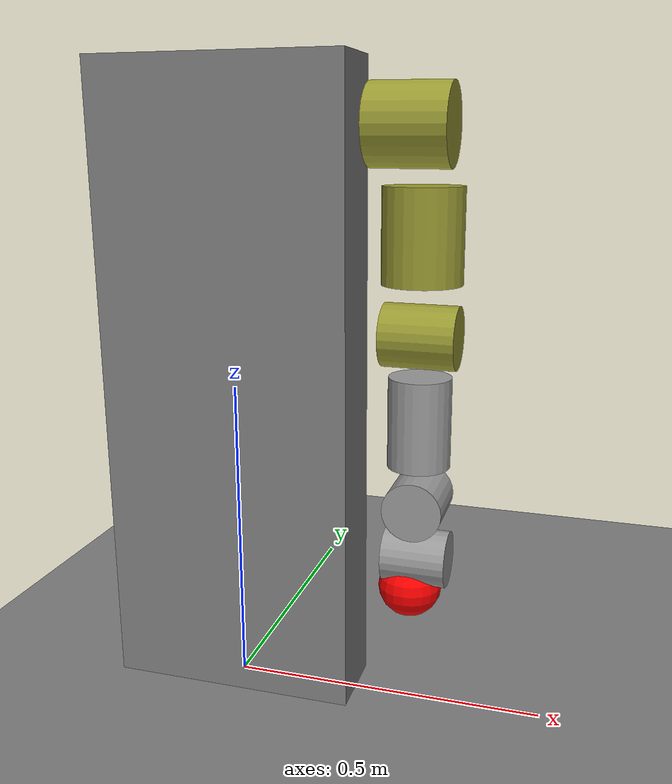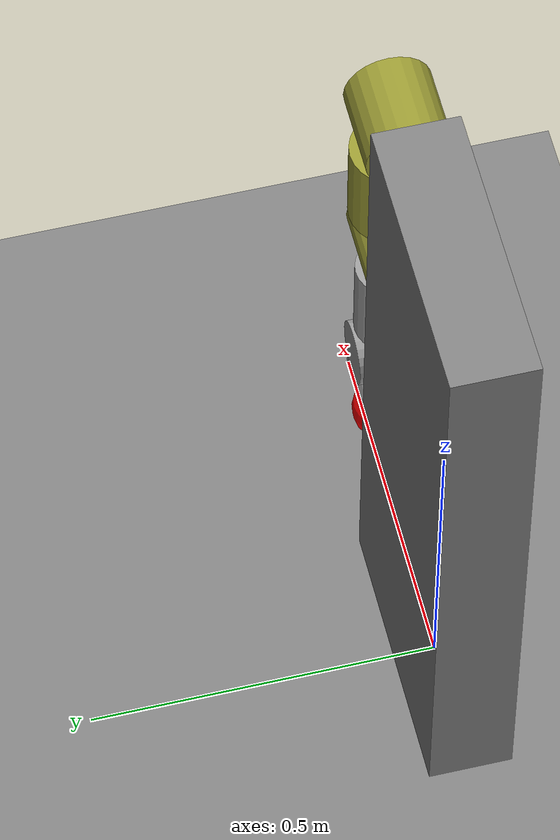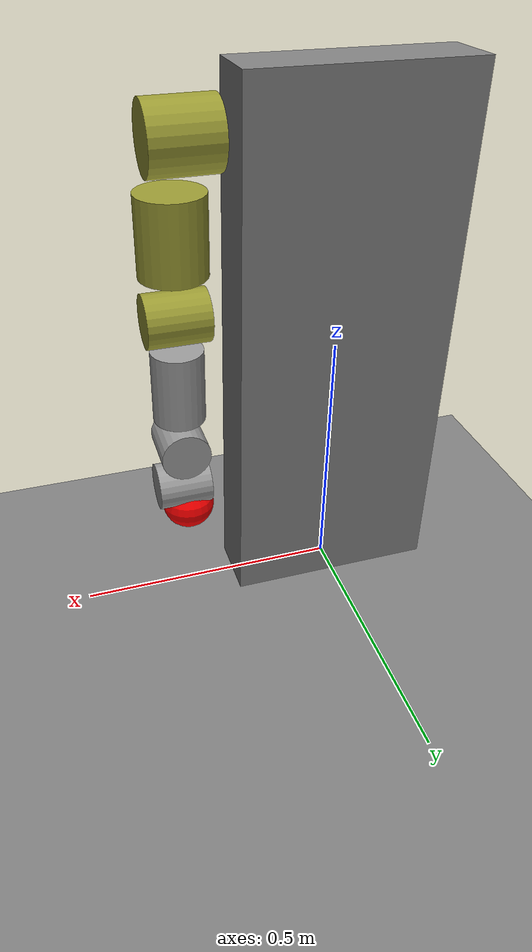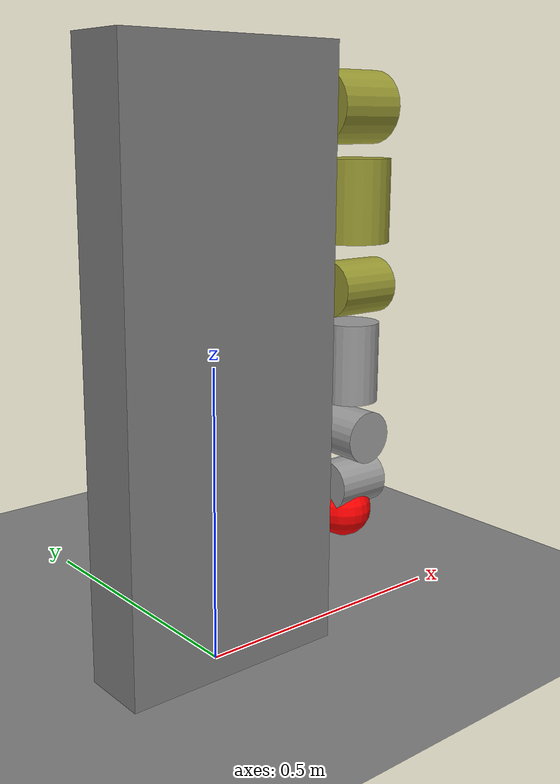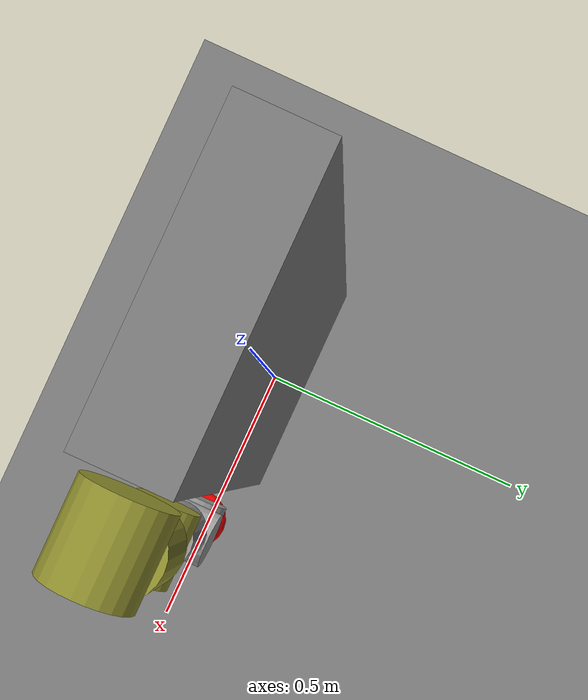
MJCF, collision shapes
<mujoco model="moz1_left_hand">
    <compiler angle="radian" autolimits="true" eulerseq="xyz" meshdir="meshes"/>
    <option timestep="0.002" iterations="100" integrator="implicitfast" density="0" viscosity="0" />

    <visual>
        <headlight diffuse="0.6 0.6 0.6" ambient="0.3 0.3 0.3" specular="0 0 0"/>
        <rgba haze="0.15 0.25 0.35 1"/>
        <global azimuth="150" elevation="-20"/>
    </visual>

    <asset>
        <texture name="plane" type="2d" builtin="checker" rgb1=".1 .1 .1" rgb2=".9 .9 .9" width="512" height="512" />
        <material name="plane" texture="plane" reflectance="0.3" texrepeat="1 1" texuniform="true" />
        <texture type="skybox" builtin="gradient" rgb1="0.3 0.5 0.7" rgb2="0 0 0" width="512" height="3072"/>

        <mesh name="L1" content_type="model/stl" file="L1.STL" />
        <mesh name="L2" content_type="model/stl" file="L2.STL" />
        <mesh name="L3" content_type="model/stl" file="L3.STL" />
        <mesh name="L4" content_type="model/stl" file="L4.STL" />
        <mesh name="L5" content_type="model/stl" file="L5.STL" />
        <mesh name="L6" content_type="model/stl" file="L6.STL" />
        <mesh name="L7" content_type="model/stl" file="L7.STL" />
    </asset>

    <worldbody>
        <geom name="floor" pos="0 0 0" size="10 10 0.1" type="plane" material="plane" condim="3" contype="1" conaffinity="65535" />
        <light directional="true" ambient=".3 .3 .3" pos="30 30 30" dir="0 -2 -1" diffuse=".5 .5 .5" specular=".5 .5 .5" />
        <body name="target" mocap="true" pos="0.289 0.0 0.1995" >
            <geom type="sphere" size="0.05" rgba="1 0 0 1" contype="0" conaffinity="0" />
        </body>

        <body name="base" pos="0 0.0 0.5">
            <geom type="box" size="0.2 0.06 0.5" rgba="0.5 0.5 0.5 0.6" mass="10" condim="3" contype="1" conaffinity="65535" />
            <body name="l_lh_1" pos="0.22 0 0.4">
                <inertial pos="0.0547495 0.00276998 0.00022292" quat="0.513235 0.51481 0.485909 0.485235" mass="2.26362" diaginertia="0.00609871 0.00593897 0.00291596" />
                <joint name="j_lh_1" pos="0 0 0" axis="1 0 0" damping="0.05" range="-3.1 3.1" actuatorfrcrange="-200 200" />
                <geom type="mesh" rgba="0.5 0.5 0.529412 1" mesh="L1" contype="0" conaffinity="0" density="0" group="1" />
                <geom type="cylinder" size="0.06 0.06" pos="0.06 0 0" euler="0 1.578 0" rgba="0.6 0.6 0.2 1" contype="1" conaffinity="1" density="0" group="3" />
                <body name="l_lh_2" pos="0.079 0 0">
                    <inertial pos="-0.0007589 -0.00895001 -0.0590928" quat="0.995435 -0.0936704 -0.0118428 -0.0139783" mass="1.70151" diaginertia="0.00997199 0.00848993 0.00349083" />
                    <joint name="j_lh_2" pos="0 0 0" axis="0 1 0" damping="0.05" range="-2.97 0.1" actuatorfrcrange="-200 200" />
                    <geom type="mesh" rgba="0.6902 0.61176 0.52941 1" mesh="L2" contype="0" conaffinity="0" density="0" group="1" />
                    <body name="l_lh_3" pos="0 0 -0.113">
                        <inertial pos="0.00354184 0.00051786 -0.122916" quat="0.682881 0.0238508 0.0228831 0.729781" mass="2.16229" diaginertia="0.0125343 0.0123931 0.00259313" />
                        <joint name="j_lh_3" pos="0 0 0" axis="0 0 1" damping="0.05" range="-3.0 3.0" actuatorfrcrange="-90 90" />
                        <geom type="mesh" rgba="0.5 0.5 0.52941 1" mesh="L3" contype="0" conaffinity="0" density="0" group="1" />
                        <geom type="cylinder" size="0.06 0.07" pos="0 0 -0.04" euler="0 0 0" rgba="0.6 0.6 0.2 1" contype="1" conaffinity="1" density="0" group="3" />
                        <body name="l_lh_4" pos="0 0 -0.187">
                            <inertial pos="-0.0173898 7.621e-05 -0.0568789" quat="0.992135 -0.000332296 0.125109 -0.00396338" mass="1.06371" diaginertia="0.00459925 0.00451648 0.000796607" />
                            <joint name="j_lh_4" pos="0 0 0" axis="1 0 0" damping="0.05" range="-2.25 2.6" actuatorfrcrange="-90 90" />
                            <geom type="mesh" rgba="0.6902 0.61176 0.52941 1" mesh="L4" contype="0" conaffinity="0" density="0" group="1" />
                            <geom type="cylinder" size="0.048 0.056" pos="-0.0 0 0" euler="0 1.578 0" rgba="0.6 0.6 0.2 1" contype="1" conaffinity="1" density="0" group="3" />
                            <body name="l_lh_5" pos="0 0 -0.101">
                                <inertial pos="0.00156708 -0.00511158 -0.0988337" quat="0.822469 0.0226677 -0.0436238 0.566681" mass="1.62899" diaginertia="0.00748142 0.00738898 0.00174301" />
                                <joint name="j_lh_5" pos="0 0 0" axis="0 0 1" damping="0.05" range="-3.05 3.05" actuatorfrcrange="-60 60" />
                                <geom type="mesh" rgba="0.5 0.5 0.52941 1" mesh="L5" contype="0" conaffinity="0" density="0" group="1" />
                                <geom type="cylinder" size="0.048 0.07" pos="0 0 -0.03" euler="0 0 0" rgba="0.6 0.6 0.6 1" contype="1" conaffinity="1" density="0" group="3" />
                                <body name="l_lh_6" pos="0 0 -0.159">
                                    <inertial pos="0.0116648 0.0105348 -0.0501291" quat="0.427373 0.142559 -0.0530785 0.891186" mass="0.92138" diaginertia="0.00292962 0.00248792 0.000689094" />
                                    <joint name="j_lh_6" pos="0 0 0" axis="0 1 0" damping="0.05" range="-1.66 1.66" actuatorfrcrange="-60 60" />
                                    <geom type="mesh" rgba="0.690196 0.611765 0.529412 1" mesh="L6" contype="0" conaffinity="0" density="0" group="1" />
                                    <geom type="cylinder" size="0.046 0.05" pos="0 0 0.0" euler="1.578 0 0" rgba="0.6 0.6 0.6 1" contype="1" conaffinity="1" density="0" group="3" />
                                    <body name="l_lh_7" pos="0 0 -0.0905">
                                        <inertial pos="-0.0050797 -3.643e-05 -0.00136032" quat="0.999385 0.000256411 -0.0318119 0.0147291" mass="0.688226" diaginertia="0.00073418 0.000715242 0.000680363" />
                                        <joint name="j_lh_7" pos="0 0 0" axis="1 0 0" damping="0.05" range="-1.57 1.57" actuatorfrcrange="-60 60" />
                                        <geom type="mesh" rgba="0.6902 0.61176 0.52941 1" mesh="L7" contype="0" conaffinity="0" density="0" group="1" />
                                        <geom type="cylinder" size="0.044 0.05" pos="0 0 0.0" euler="0 1.578 0" rgba="0.6 0.6 0.6 1" contype="1" conaffinity="1" density="0" group="3" />
                                        <body name="ee_link" pos="-0.01 0 -0.05">
                                            <site name="ee_link_site" size="0.01 0.01 0.01" rgba="0 1 0 1" group="1" />
                                        </body>
                                    </body>
                                </body>
                            </body>
                        </body>
                    </body>
                </body>
            </body>
        </body>
    </worldbody>

    <actuator>
        <position name="lh_1" joint="j_lh_1" kp="2500" kv="100" ctrlrange="-3.1 3.1" />
        <position name="lh_2" joint="j_lh_2" kp="2500" kv="100" ctrlrange="-2.97 0.1" />
        <position name="lh_3" joint="j_lh_3" kp="2500" kv="100" ctrlrange="-3.0 3.0" />
        <position name="lh_4" joint="j_lh_4" kp="2500" kv="100" ctrlrange="-2.25 2.6" />
        <position name="lh_5" joint="j_lh_5" kp="2500" kv="100" ctrlrange="-3.05 3.05" />
        <position name="lh_6" joint="j_lh_6" kp="2500" kv="100" ctrlrange="-1.66 1.66" />
        <position name="lh_7" joint="j_lh_7" kp="2500" kv="100" ctrlrange="-1.57 1.57" />
    </actuator>
</mujoco>
